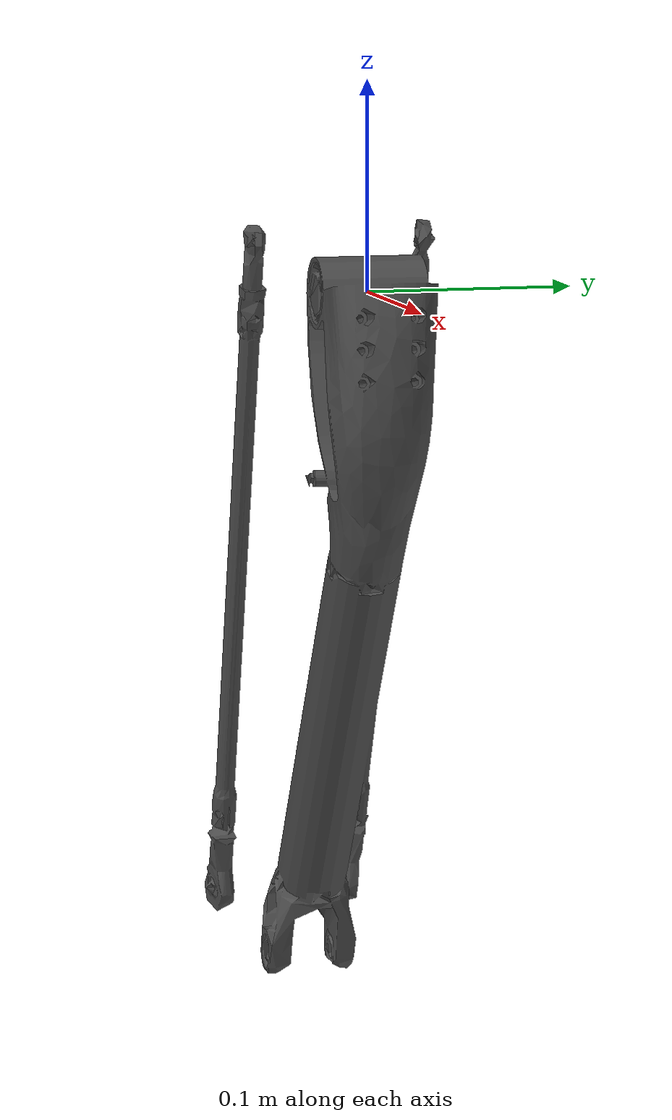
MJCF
<mujoco model="leg_tibia_link">
  <default>
    <default class="visual">
      <geom group="2" type="mesh" contype="0" conaffinity="0"/>
    </default>
    <default class="collision">
      <geom group="3" type="mesh"/>
    </default>
  </default>
  <asset>
    <material name="mtl_leg_tibia_link" specular="0.20000000000000004" shininess="1.0" rgba="0.29803922 0.29803922 0.29803922 1.0"/>
    <mesh file="leg_tibia_link.obj"/>
  </asset>
  <worldbody>
    <body name="leg_tibia_link">
      <geom material="mtl_leg_tibia_link" mesh="leg_tibia_link" class="visual"/>
      <geom mesh="leg_tibia_link" class="collision"/>
    </body>
  </worldbody>
</mujoco>
